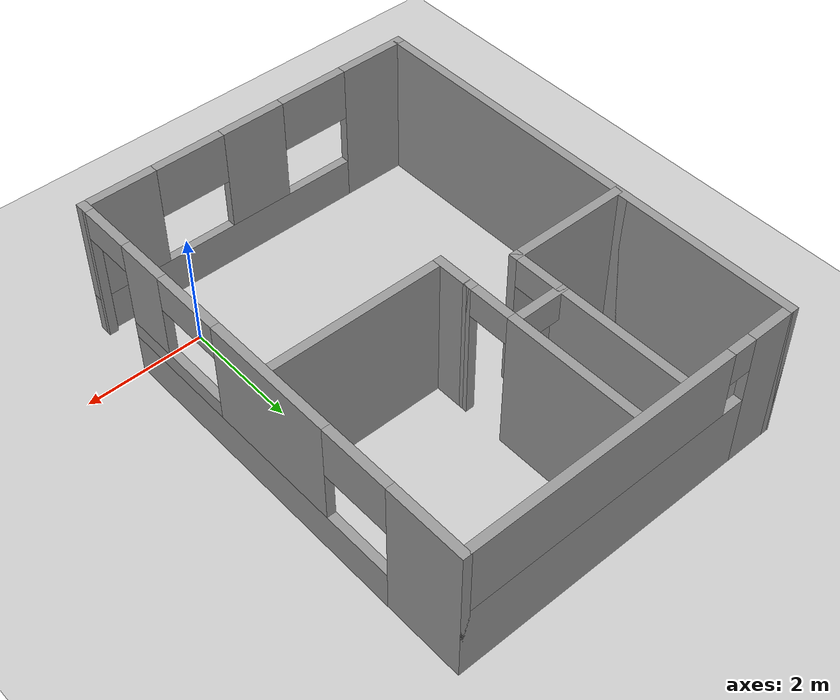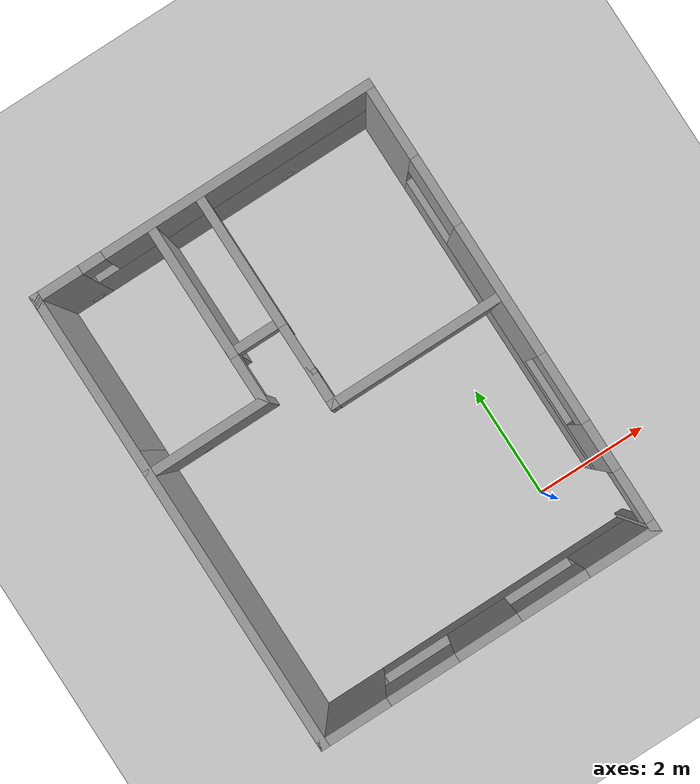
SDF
<sdf version="1.7">
 <world name="default">
  <light name="sun" type="directional">
   <pose>0 0 10 0 -0 0</pose>
   <diffuse>0.8 0.8 0.8 1</diffuse>
   <specular>0.2 0.2 0.2 1</specular>
   <attenuation>
    <range>1000</range>
    <constant>0.9</constant>
    <linear>0.01</linear>
    <quadratic>0.001</quadratic>
   </attenuation>
   <direction>-0.5 0.1 -0.9</direction>
   <spot><inner_angle>0</inner_angle><outer_angle>0</outer_angle><falloff>0</falloff></spot>
  </light>
  <model name="ground_plane">
   <static>1</static>
   <link name="link">
    <collision name="collision">
     <geometry><plane><normal>0 0 1</normal><size>100 100</size></plane></geometry>
     <surface>
      <contact><collide_bitmask>65535</collide_bitmask></contact>
      <friction><ode><mu>100</mu><mu2>50</mu2></ode></friction>
     </surface>
    </collision>
    <visual name="visual">
     <cast_shadows>0</cast_shadows>
     <geometry><plane><normal>0 0 1</normal><size>100 100</size></plane></geometry>
     <material>
      <script><uri>file://media/materials/scripts/gazebo.material</uri><name>Gazebo/Grey</name></script>
     </material>
    </visual>
   </link>
  </model>
  <gravity>0 0 -9.8</gravity>
  <magnetic_field>6e-06 2.3e-05 -4.2e-05</magnetic_field>
  <atmosphere type="adiabatic"/>
  <physics type="ode">
   <max_step_size>0.001</max_step_size>
   <real_time_factor>1</real_time_factor>
   <real_time_update_rate>1000</real_time_update_rate>
  </physics>
  <scene><ambient>0.4 0.4 0.4 1</ambient><background>0.7 0.7 0.7 1</background><shadows>1</shadows></scene>
  <spherical_coordinates>
   <surface_model>EARTH_WGS84</surface_model>
   <latitude_deg>0</latitude_deg>
   <longitude_deg>0</longitude_deg>
   <elevation>0</elevation>
   <heading_deg>0</heading_deg>
  </spherical_coordinates>
  <model name="campo">
   <pose>-2.00902 2.8262 0 0 -0 0</pose>
   <link name="Wall_42">
    <pose>0 -3.925 0 0 -0 0</pose>
    <visual name="Wall_42_Visual_0">
     <pose>-2.3818 0 1.25 0 -0 0</pose>
     <geometry><box><size>1.2364 0.15 2.5</size></box></geometry>
     <material>
      <script><uri>file://media/materials/scripts/gazebo.material</uri><name>Gazebo/Grey</name></script>
      <ambient>1 1 1 1</ambient>
     </material>
     <meta><layer>0</layer></meta>
    </visual>
    <collision name="Wall_42_Collision_0">
     <geometry><box><size>1.2364 0.15 2.5</size></box></geometry>
     <pose>-2.3818 0 1.25 0 -0 0</pose>
    </collision>
    <visual name="Wall_42_Visual_1">
     <pose>0.618201 0 0.35 0 -0 0</pose>
     <geometry><box><size>4.7636 0.15 0.7</size></box></geometry>
     <material>
      <script><uri>file://media/materials/scripts/gazebo.material</uri><name>Gazebo/Grey</name></script>
      <ambient>1 1 1 1</ambient>
     </material>
     <meta><layer>0</layer></meta>
    </visual>
    <collision name="Wall_42_Collision_1">
     <geometry><box><size>4.7636 0.15 0.7</size></box></geometry>
     <pose>0.618201 0 0.35 0 -0 0</pose>
    </collision>
    <visual name="Wall_42_Visual_2">
     <pose>-0.013295 0 1.6 0 -0 0</pose>
     <geometry><box><size>1.10061 0.15 1.8</size></box></geometry>
     <material>
      <script><uri>file://media/materials/scripts/gazebo.material</uri><name>Gazebo/Grey</name></script>
      <ambient>1 1 1 1</ambient>
     </material>
     <meta><layer>0</layer></meta>
    </visual>
    <collision name="Wall_42_Collision_2">
     <geometry><box><size>1.10061 0.15 1.8</size></box></geometry>
     <pose>-0.013295 0 1.6 0 -0 0</pose>
    </collision>
    <visual name="Wall_42_Visual_3">
     <pose>2.3685 0 1.6 0 -0 0</pose>
     <geometry><box><size>1.26299 0.15 1.8</size></box></geometry>
     <material>
      <script><uri>file://media/materials/scripts/gazebo.material</uri><name>Gazebo/Grey</name></script>
      <ambient>1 1 1 1</ambient>
     </material>
     <meta><layer>0</layer></meta>
    </visual>
    <collision name="Wall_42_Collision_3">
     <geometry><box><size>1.26299 0.15 1.8</size></box></geometry>
     <pose>2.3685 0 1.6 0 -0 0</pose>
    </collision>
    <visual name="Wall_42_Visual_4">
     <pose>-1.1636 0 2.05 0 -0 0</pose>
     <geometry><box><size>1.2 0.15 0.9</size></box></geometry>
     <material>
      <script><uri>file://media/materials/scripts/gazebo.material</uri><name>Gazebo/Grey</name></script>
      <ambient>1 1 1 1</ambient>
     </material>
     <meta><layer>0</layer></meta>
    </visual>
    <collision name="Wall_42_Collision_4">
     <geometry><box><size>1.2 0.15 0.9</size></box></geometry>
     <pose>-1.1636 0 2.05 0 -0 0</pose>
    </collision>
    <visual name="Wall_42_Visual_5">
     <pose>1.13701 0 2.05 0 -0 0</pose>
     <geometry><box><size>1.2 0.15 0.9</size></box></geometry>
     <material>
      <script><uri>file://media/materials/scripts/gazebo.material</uri><name>Gazebo/Grey</name></script>
      <ambient>1 1 1 1</ambient>
     </material>
     <meta><layer>0</layer></meta>
    </visual>
    <collision name="Wall_42_Collision_5">
     <geometry><box><size>1.2 0.15 0.9</size></box></geometry>
     <pose>1.13701 0 2.05 0 -0 0</pose>
    </collision>
   </link>
   <link name="Wall_45">
    <collision name="Wall_45_Collision">
     <geometry><box><size>8 0.15 2.5</size></box></geometry>
     <pose>0 0 1.25 0 -0 0</pose>
    </collision>
    <visual name="Wall_45_Visual">
     <pose>0 0 1.25 0 -0 0</pose>
     <geometry><box><size>8 0.15 2.5</size></box></geometry>
     <material>
      <script><uri>file://media/materials/scripts/gazebo.material</uri><name>Gazebo/Grey</name></script>
      <ambient>1 1 1 1</ambient>
     </material>
     <meta><layer>0</layer></meta>
    </visual>
    <pose>-2.925 0 0 0 -0 1.5708</pose>
   </link>
   <link name="Wall_49">
    <pose>0 3.925 0 0 -0 0</pose>
    <visual name="Wall_49_Visual_0">
     <pose>-2.56969 0 1.25 0 -0 0</pose>
     <geometry><box><size>0.860615 0.15 2.5</size></box></geometry>
     <material>
      <script><uri>file://media/materials/scripts/gazebo.material</uri><name>Gazebo/Grey</name></script>
      <ambient>1 1 1 1</ambient>
     </material>
     <meta><layer>0</layer></meta>
    </visual>
    <collision name="Wall_49_Collision_0">
     <geometry><box><size>0.860615 0.15 2.5</size></box></geometry>
     <pose>-2.56969 0 1.25 0 -0 0</pose>
    </collision>
    <visual name="Wall_49_Visual_1">
     <pose>0.430308 0 0.65 0 -0 0</pose>
     <geometry><box><size>5.13938 0.15 1.3</size></box></geometry>
     <material>
      <script><uri>file://media/materials/scripts/gazebo.material</uri><name>Gazebo/Grey</name></script>
      <ambient>1 1 1 1</ambient>
     </material>
     <meta><layer>0</layer></meta>
    </visual>
    <collision name="Wall_49_Collision_1">
     <geometry><box><size>5.13938 0.15 1.3</size></box></geometry>
     <pose>0.430308 0 0.65 0 -0 0</pose>
    </collision>
    <visual name="Wall_49_Visual_2">
     <pose>0.630308 0 1.9 0 -0 0</pose>
     <geometry><box><size>4.73939 0.15 1.2</size></box></geometry>
     <material>
      <script><uri>file://media/materials/scripts/gazebo.material</uri><name>Gazebo/Grey</name></script>
      <ambient>1 1 1 1</ambient>
     </material>
     <meta><layer>0</layer></meta>
    </visual>
    <collision name="Wall_49_Collision_2">
     <geometry><box><size>4.73939 0.15 1.2</size></box></geometry>
     <pose>0.630308 0 1.9 0 -0 0</pose>
    </collision>
    <visual name="Wall_49_Visual_3">
     <pose>-1.93938 0 2.2 0 -0 0</pose>
     <geometry><box><size>0.4 0.15 0.6</size></box></geometry>
     <material>
      <script><uri>file://media/materials/scripts/gazebo.material</uri><name>Gazebo/Grey</name></script>
      <ambient>1 1 1 1</ambient>
     </material>
     <meta><layer>0</layer></meta>
    </visual>
    <collision name="Wall_49_Collision_3">
     <geometry><box><size>0.4 0.15 0.6</size></box></geometry>
     <pose>-1.93938 0 2.2 0 -0 0</pose>
    </collision>
   </link>
   <link name="Wall_50">
    <pose>2.925 0 0 0 -0 -1.5708</pose>
    <visual name="Wall_50_Visual_0">
     <pose>-3.32437 0 1.25 0 -0 0</pose>
     <geometry><box><size>1.35126 0.15 2.5</size></box></geometry>
     <material>
      <script><uri>file://media/materials/scripts/gazebo.material</uri><name>Gazebo/Grey</name></script>
      <ambient>1 1 1 1</ambient>
     </material>
     <meta><layer>0</layer></meta>
    </visual>
    <collision name="Wall_50_Collision_0">
     <geometry><box><size>1.35126 0.15 2.5</size></box></geometry>
     <pose>-3.32437 0 1.25 0 -0 0</pose>
    </collision>
    <visual name="Wall_50_Visual_1">
     <pose>3.88913 0 1.25 0 -0 0</pose>
     <geometry><box><size>0.221743 0.15 2.5</size></box></geometry>
     <material>
      <script><uri>file://media/materials/scripts/gazebo.material</uri><name>Gazebo/Grey</name></script>
      <ambient>1 1 1 1</ambient>
     </material>
     <meta><layer>0</layer></meta>
    </visual>
    <collision name="Wall_50_Collision_1">
     <geometry><box><size>0.221743 0.15 2.5</size></box></geometry>
     <pose>3.88913 0 1.25 0 -0 0</pose>
    </collision>
    <visual name="Wall_50_Visual_2">
     <pose>0.114756 0 0.35 0 -0 0</pose>
     <geometry><box><size>5.527 0.15 0.7</size></box></geometry>
     <material>
      <script><uri>file://media/materials/scripts/gazebo.material</uri><name>Gazebo/Grey</name></script>
      <ambient>1 1 1 1</ambient>
     </material>
     <meta><layer>0</layer></meta>
    </visual>
    <collision name="Wall_50_Collision_2">
     <geometry><box><size>5.527 0.15 0.7</size></box></geometry>
     <pose>0.114756 0 0.35 0 -0 0</pose>
    </collision>
    <visual name="Wall_50_Visual_3">
     <pose>-0.309913 0 1.6 0 -0 0</pose>
     <geometry><box><size>2.27766 0.15 1.8</size></box></geometry>
     <material>
      <script><uri>file://media/materials/scripts/gazebo.material</uri><name>Gazebo/Grey</name></script>
      <ambient>1 1 1 1</ambient>
     </material>
     <meta><layer>0</layer></meta>
    </visual>
    <collision name="Wall_50_Collision_3">
     <geometry><box><size>2.27766 0.15 1.8</size></box></geometry>
     <pose>-0.309913 0 1.6 0 -0 0</pose>
    </collision>
    <visual name="Wall_50_Visual_4">
     <pose>1.85359 0 0.85 0 -0 0</pose>
     <geometry><box><size>2.04934 0.15 0.3</size></box></geometry>
     <material>
      <script><uri>file://media/materials/scripts/gazebo.material</uri><name>Gazebo/Grey</name></script>
      <ambient>1 1 1 1</ambient>
     </material>
     <meta><layer>0</layer></meta>
    </visual>
    <collision name="Wall_50_Collision_4">
     <geometry><box><size>2.04934 0.15 0.3</size></box></geometry>
     <pose>1.85359 0 0.85 0 -0 0</pose>
    </collision>
    <visual name="Wall_50_Visual_5">
     <pose>2.45359 0 1.75 0 -0 0</pose>
     <geometry><box><size>0.849339 0.15 1.5</size></box></geometry>
     <material>
      <script><uri>file://media/materials/scripts/gazebo.material</uri><name>Gazebo/Grey</name></script>
      <ambient>1 1 1 1</ambient>
     </material>
     <meta><layer>0</layer></meta>
    </visual>
    <collision name="Wall_50_Collision_5">
     <geometry><box><size>0.849339 0.15 1.5</size></box></geometry>
     <pose>2.45359 0 1.75 0 -0 0</pose>
    </collision>
    <visual name="Wall_50_Visual_6">
     <pose>-2.04874 0 2.05 0 -0 0</pose>
     <geometry><box><size>1.2 0.15 0.9</size></box></geometry>
     <material>
      <script><uri>file://media/materials/scripts/gazebo.material</uri><name>Gazebo/Grey</name></script>
      <ambient>1 1 1 1</ambient>
     </material>
     <meta><layer>0</layer></meta>
    </visual>
    <collision name="Wall_50_Collision_6">
     <geometry><box><size>1.2 0.15 0.9</size></box></geometry>
     <pose>-2.04874 0 2.05 0 -0 0</pose>
    </collision>
    <visual name="Wall_50_Visual_7">
     <pose>1.42892 0 2.2 0 -0 0</pose>
     <geometry><box><size>1.2 0.15 0.6</size></box></geometry>
     <material>
      <script><uri>file://media/materials/scripts/gazebo.material</uri><name>Gazebo/Grey</name></script>
      <ambient>1 1 1 1</ambient>
     </material>
     <meta><layer>0</layer></meta>
    </visual>
    <collision name="Wall_50_Collision_7">
     <geometry><box><size>1.2 0.15 0.6</size></box></geometry>
     <pose>1.42892 0 2.2 0 -0 0</pose>
    </collision>
    <visual name="Wall_50_Visual_8">
     <pose>3.32826 0 2.25 0 -0 0</pose>
     <geometry><box><size>0.9 0.15 0.5</size></box></geometry>
     <material>
      <script><uri>file://media/materials/scripts/gazebo.material</uri><name>Gazebo/Grey</name></script>
      <ambient>1 1 1 1</ambient>
     </material>
     <meta><layer>0</layer></meta>
    </visual>
    <collision name="Wall_50_Collision_8">
     <geometry><box><size>0.9 0.15 0.5</size></box></geometry>
     <pose>3.32826 0 2.25 0 -0 0</pose>
    </collision>
   </link>
   <link name="Wall_55">
    <collision name="Wall_55_Collision">
     <geometry><box><size>3.25 0.15 2.5</size></box></geometry>
     <pose>0 0 1.25 0 -0 0</pose>
    </collision>
    <visual name="Wall_55_Visual">
     <pose>0 0 1.25 0 -0 0</pose>
     <geometry><box><size>3.25 0.15 2.5</size></box></geometry>
     <material>
      <script><uri>file://media/materials/scripts/gazebo.material</uri><name>Gazebo/Grey</name></script>
      <ambient>1 1 1 1</ambient>
     </material>
     <meta><layer>0</layer></meta>
    </visual>
    <pose>-2.925 2.375 0 0 -0 -1.5708</pose>
   </link>
   <link name="Wall_59">
    <collision name="Wall_59_Collision">
     <geometry><box><size>0.75 0.15 2.5</size></box></geometry>
     <pose>0 0 1.25 0 -0 0</pose>
    </collision>
    <visual name="Wall_59_Visual">
     <pose>0 0 1.25 0 -0 0</pose>
     <geometry><box><size>0.75 0.15 2.5</size></box></geometry>
     <material>
      <script><uri>file://media/materials/scripts/gazebo.material</uri><name>Gazebo/Grey</name></script>
      <ambient>1 1 1 1</ambient>
     </material>
     <meta><layer>0</layer></meta>
    </visual>
    <pose>-0.075 0.525 0 0 -0 -1.5708</pose>
   </link>
   <link name="Wall_60">
    <collision name="Wall_60_Collision">
     <geometry><box><size>3 0.15 2.5</size></box></geometry>
     <pose>0 0 1.25 0 -0 0</pose>
    </collision>
    <visual name="Wall_60_Visual">
     <pose>0 0 1.25 0 -0 0</pose>
     <geometry><box><size>3 0.15 2.5</size></box></geometry>
     <material>
      <script><uri>file://media/materials/scripts/gazebo.material</uri><name>Gazebo/Grey</name></script>
      <ambient>1 1 1 1</ambient>
     </material>
     <meta><layer>0</layer></meta>
    </visual>
    <pose>1.35 0.225 0 0 -0 0</pose>
   </link>
   <link name="Wall_62">
    <pose>-0.075 1.25 0 0 -0 1.5708</pose>
    <visual name="Wall_62_Visual_0">
     <pose>-0.463521 0 1.25 0 -0 0</pose>
     <geometry><box><size>0.072958 0.15 2.5</size></box></geometry>
     <material>
      <script><uri>file://media/materials/scripts/gazebo.material</uri><name>Gazebo/Grey</name></script>
      <ambient>1 1 1 1</ambient>
     </material>
     <meta><layer>0</layer></meta>
    </visual>
    <collision name="Wall_62_Collision_0">
     <geometry><box><size>0.072958 0.15 2.5</size></box></geometry>
     <pose>-0.463521 0 1.25 0 -0 0</pose>
    </collision>
    <visual name="Wall_62_Visual_1">
     <pose>0.486479 0 1.25 0 -0 0</pose>
     <geometry><box><size>0.027042 0.15 2.5</size></box></geometry>
     <material>
      <script><uri>file://media/materials/scripts/gazebo.material</uri><name>Gazebo/Grey</name></script>
      <ambient>1 1 1 1</ambient>
     </material>
     <meta><layer>0</layer></meta>
    </visual>
    <collision name="Wall_62_Collision_1">
     <geometry><box><size>0.027042 0.15 2.5</size></box></geometry>
     <pose>0.486479 0 1.25 0 -0 0</pose>
    </collision>
    <visual name="Wall_62_Visual_2">
     <pose>0.022958 0 2.25 0 -0 0</pose>
     <geometry><box><size>0.9 0.15 0.5</size></box></geometry>
     <material>
      <script><uri>file://media/materials/scripts/gazebo.material</uri><name>Gazebo/Grey</name></script>
      <ambient>1 1 1 1</ambient>
     </material>
     <meta><layer>0</layer></meta>
    </visual>
    <collision name="Wall_62_Collision_2">
     <geometry><box><size>0.9 0.15 0.5</size></box></geometry>
     <pose>0.022958 0 2.25 0 -0 0</pose>
    </collision>
   </link>
   <link name="Wall_63">
    <pose>-0.5 1.675 0 0 -0 3.14159</pose>
    <visual name="Wall_63_Visual_0">
     <pose>-0.437464 0 1.25 0 -0 0</pose>
     <geometry><box><size>0.125071 0.15 2.5</size></box></geometry>
     <material>
      <script><uri>file://media/materials/scripts/gazebo.material</uri><name>Gazebo/Grey</name></script>
      <ambient>1 1 1 1</ambient>
     </material>
     <meta><layer>0</layer></meta>
    </visual>
    <collision name="Wall_63_Collision_0">
     <geometry><box><size>0.125071 0.15 2.5</size></box></geometry>
     <pose>-0.437464 0 1.25 0 -0 0</pose>
    </collision>
    <visual name="Wall_63_Visual_1">
     <pose>0.062536 0 2.25 0 -0 0</pose>
     <geometry><box><size>0.874929 0.15 0.5</size></box></geometry>
     <material>
      <script><uri>file://media/materials/scripts/gazebo.material</uri><name>Gazebo/Grey</name></script>
      <ambient>1 1 1 1</ambient>
     </material>
     <meta><layer>0</layer></meta>
    </visual>
    <collision name="Wall_63_Collision_1">
     <geometry><box><size>0.874929 0.15 0.5</size></box></geometry>
     <pose>0.062536 0 2.25 0 -0 0</pose>
    </collision>
   </link>
   <link name="Wall_64">
    <pose>-0.925 1.25 0 0 -0 -1.5708</pose>
    <visual name="Wall_64_Visual_0">
     <pose>-0.446352 0 1.25 0 -0 0</pose>
     <geometry><box><size>0.107295 0.15 2.5</size></box></geometry>
     <material>
      <script><uri>file://media/materials/scripts/gazebo.material</uri><name>Gazebo/Grey</name></script>
      <ambient>1 1 1 1</ambient>
     </material>
     <meta><layer>0</layer></meta>
    </visual>
    <collision name="Wall_64_Collision_0">
     <geometry><box><size>0.107295 0.15 2.5</size></box></geometry>
     <pose>-0.446352 0 1.25 0 -0 0</pose>
    </collision>
    <visual name="Wall_64_Visual_1">
     <pose>0.053648 0 2.25 0 -0 0</pose>
     <geometry><box><size>0.892705 0.15 0.5</size></box></geometry>
     <material>
      <script><uri>file://media/materials/scripts/gazebo.material</uri><name>Gazebo/Grey</name></script>
      <ambient>1 1 1 1</ambient>
     </material>
     <meta><layer>0</layer></meta>
    </visual>
    <collision name="Wall_64_Collision_1">
     <geometry><box><size>0.892705 0.15 0.5</size></box></geometry>
     <pose>0.053648 0 2.25 0 -0 0</pose>
    </collision>
   </link>
   <link name="Wall_65">
    <collision name="Wall_65_Collision">
     <geometry><box><size>2.15 0.15 2.5</size></box></geometry>
     <pose>0 0 1.25 0 -0 0</pose>
    </collision>
    <visual name="Wall_65_Visual">
     <pose>0 0 1.25 0 -0 0</pose>
     <geometry><box><size>2.15 0.15 2.5</size></box></geometry>
     <material>
      <script><uri>file://media/materials/scripts/gazebo.material</uri><name>Gazebo/Grey</name></script>
      <ambient>1 1 1 1</ambient>
     </material>
     <meta><layer>0</layer></meta>
    </visual>
    <pose>-1.925 0.825 0 0 -0 3.14159</pose>
   </link>
   <link name="Wall_67">
    <collision name="Wall_67_Collision">
     <geometry><box><size>2.25 0.15 2.5</size></box></geometry>
     <pose>0 0 1.25 0 -0 0</pose>
    </collision>
    <visual name="Wall_67_Visual">
     <pose>0 0 1.25 0 -0 0</pose>
     <geometry><box><size>2.25 0.15 2.5</size></box></geometry>
     <material>
      <script><uri>file://media/materials/scripts/gazebo.material</uri><name>Gazebo/Grey</name></script>
      <ambient>1 1 1 1</ambient>
     </material>
     <meta><layer>0</layer></meta>
    </visual>
    <pose>-0.925 2.725 0 0 -0 1.5708</pose>
   </link>
   <link name="Wall_69">
    <collision name="Wall_69_Collision">
     <geometry><box><size>2.25 0.15 2.5</size></box></geometry>
     <pose>0 0 1.25 0 -0 0</pose>
    </collision>
    <visual name="Wall_69_Visual">
     <pose>0 0 1.25 0 -0 0</pose>
     <geometry><box><size>2.25 0.15 2.5</size></box></geometry>
     <material>
      <script><uri>file://media/materials/scripts/gazebo.material</uri><name>Gazebo/Grey</name></script>
      <ambient>1 1 1 1</ambient>
     </material>
     <meta><layer>0</layer></meta>
    </visual>
    <pose>-0.075 2.725 0 0 -0 1.5708</pose>
   </link>
   <static>1</static>
  </model>
  <model name="qr_cocina">
   <static>1</static>
   <link name="qr_cocina_link">
    <pose>0 0 0.001 0 -0 1.5708</pose>
    <visual name="visual_qr_cocina">
     <cast_shadows>0</cast_shadows>
     <geometry><box><size>0.2 0.2 0.001</size></box></geometry>
     <material>
      <script>
       <uri>model://qr_cocina/materials/scripts</uri>
       <uri>model://qr_cocina/materials/textures</uri>
       <name>qr_cocina/qr_cocina</name>
      </script>
     </material>
    </visual>
   </link>
   <pose>-0.192353 2.9747 0.170638 -1.5708 0 0</pose>
  </model>
  <model name="qr_salon">
   <static>1</static>
   <link name="qr_salon_link">
    <pose>0 0 0.001 0 -0 1.5708</pose>
    <visual name="visual_qr_salon">
     <cast_shadows>0</cast_shadows>
     <geometry><box><size>0.2 0.2 0.001</size></box></geometry>
     <material>
      <script>
       <uri>model://qr_salon/materials/scripts</uri>
       <uri>model://qr_salon/materials/textures</uri>
       <name>qr_salon/qr_salon</name>
      </script>
     </material>
    </visual>
   </link>
   <pose>-4.25902 3.5747 0.173801 -1.5708 3e-06 -3e-06</pose>
  </model>
  <model name="qr_habitacion">
   <static>1</static>
   <link name="qr_habitacion_link">
    <pose>0 0 0.001 0 -0 1.5708</pose>
    <visual name="visual_qr_habitacion">
     <cast_shadows>0</cast_shadows>
     <geometry><box><size>0.2 0.2 0.001</size></box></geometry>
     <material>
      <script>
       <uri>model://qr_habitacion/materials/scripts</uri>
       <uri>model://qr_habitacion/materials/textures</uri>
       <name>qr_habitacion/qr_habitacion</name>
      </script>
     </material>
    </visual>
   </link>
   <pose>-0.688816 6.6747 0.282943 -1.5708 0 0</pose>
  </model>
  <model name="qr_wc">
   <static>1</static>
   <link name="qr_wc_link">
    <pose>0 0 0.001 0 -0 1.5708</pose>
    <visual name="visual_qr_wc">
     <cast_shadows>0</cast_shadows>
     <geometry><box><size>0.2 0.2 0.001</size></box></geometry>
     <material>
      <script>
       <uri>model://qr_wc/materials/scripts</uri>
       <uri>model://qr_wc/materials/textures</uri>
       <name>qr_wc/qr_wc</name>
      </script>
     </material>
    </visual>
   </link>
   <pose>-4.40194 6.6747 0.205489 -1.5708 0 0</pose>
  </model>
 </world>
</sdf>
